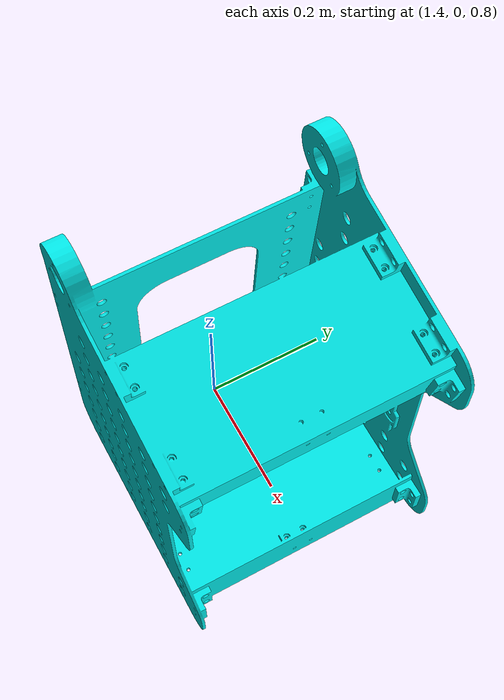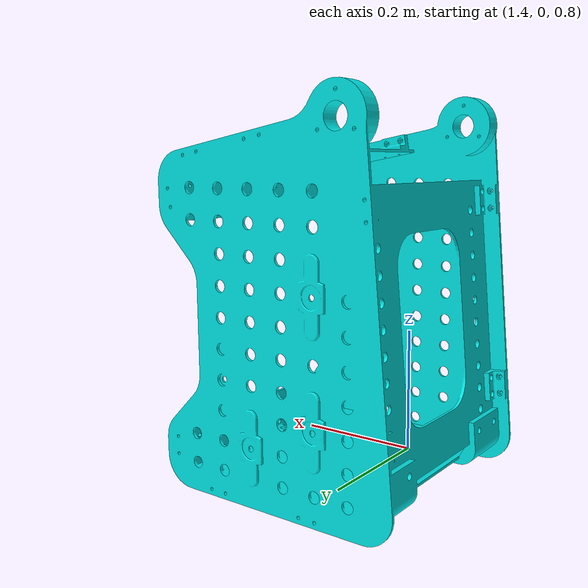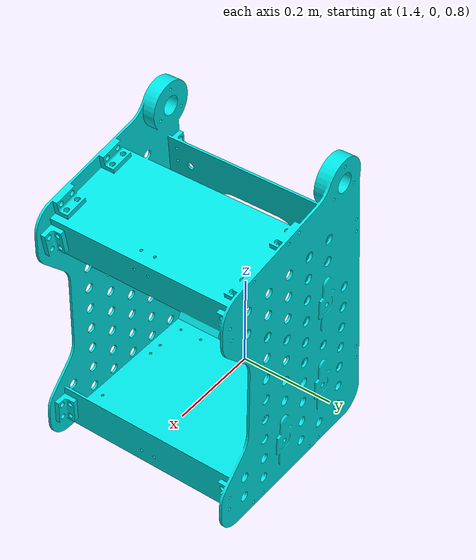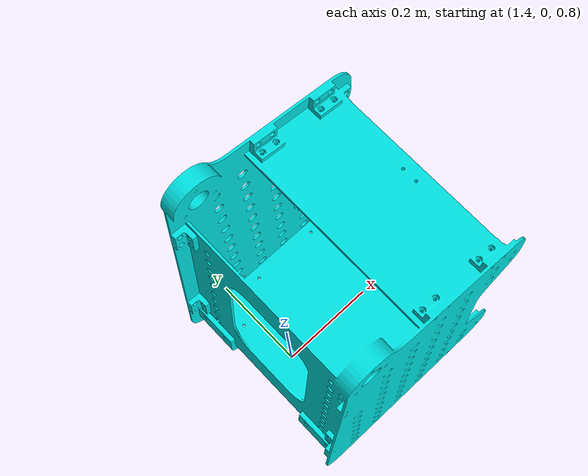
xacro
<?xml version="1.0" encoding="utf-8"?>
<robot name="environment" xmlns:xacro="http://www.ros.org/wiki/xacro">

  <xacro:arg name="with_sc"        default="false"/>
  <xacro:arg name="pylone_x"       default="1.5"/>
  <xacro:arg name="pylone_y"       default="0.0"/>
  <xacro:arg name="pylone_z"       default="1.03"/>
  <xacro:arg name="pylone_roll"    default="0.0"/>
  <xacro:arg name="pylone_pitch"   default="0.0"/>
  <xacro:arg name="pylone_yaw"     default="0.0"/>

  <link name="world"/>

  <xacro:include filename="$(find agimus_demo_07_fixed_tiago_pro_deburring)/urdf/pylone.urdf.xacro"/>

  <joint name="world_to_pylone" type="fixed">
    <parent link="world"/>
    <child link="pylone_link"/>
    <origin xyz="$(arg pylone_x) $(arg pylone_y) $(arg pylone_z)"
            rpy="$(arg pylone_roll) $(arg pylone_pitch) $(arg pylone_yaw)"/>
  </joint>

</robot>

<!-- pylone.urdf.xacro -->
<robot name="pylone" xmlns:xacro="http://www.ros.org/wiki/xacro">

  <xacro:arg name="with_sc" default="false"/>

  <material name="grey">
    <color rgba="0.0 0.9 0.9 1.0"/>
  </material>

  <link name="pylone_link">
    <visual>
      <geometry>
        <mesh filename="file://$(find agimus_demo_07_fixed_tiago_pro_deburring)/urdf/visual/pylone.stl"
              scale="1.0 1.0 1.0"/>
      </geometry>
      <material name="grey"/>
    </visual>
    <collision>
      <geometry>
        <mesh filename="file://$(find agimus_demo_07_fixed_tiago_pro_deburring)/urdf/collision/pylone.stl"
              scale="1.0 1.0 1.0"/>
      </geometry>
    </collision>
    <inertial>
      <origin rpy="0 0 0" xyz="0.0 0.0 0.0"/>
      <mass value="0.1"/>
      <inertia ixx="1" ixy="0" ixz="0" iyy="1" iyz="0" izz="1"/>
    </inertial>
  </link>

  <!-- Simplified capsule collision geometry for MPC — same geometry as Panda pylone -->
  <xacro:if value="${'$(arg with_sc)' == 'true'}">
    <link name="pylone_sc_link">

      <!-- Side edges of the hole (vertical, capsule_0 and capsule_1) -->
      <collision>
        <origin xyz="0.03 0.1 -0.045" rpy="0 0 0"/>
        <geometry><cylinder radius="0.004" length="0.6"/></geometry>
      </collision>
      <collision>
        <origin xyz="0.03 0.1 0.255" rpy="0 0 0"/>
        <geometry><sphere radius="0.004"/></geometry>
      </collision>
      <collision>
        <origin xyz="0.03 0.1 -0.345" rpy="0 0 0"/>
        <geometry><sphere radius="0.004"/></geometry>
      </collision>

      <collision>
        <origin xyz="0.03 -0.1 -0.045" rpy="0 0 0"/>
        <geometry><cylinder radius="0.004" length="0.6"/></geometry>
      </collision>
      <collision>
        <origin xyz="0.03 -0.1 0.255" rpy="0 0 0"/>
        <geometry><sphere radius="0.004"/></geometry>
      </collision>
      <collision>
        <origin xyz="0.03 -0.1 -0.345" rpy="0 0 0"/>
        <geometry><sphere radius="0.004"/></geometry>
      </collision>

      <!-- Top and bottom bars of the hole (horizontal, capsule_2 and capsule_3) -->
      <collision>
        <origin xyz="0.03 0.0 0.105" rpy="1.5708 0 0"/>
        <geometry><cylinder radius="0.004" length="0.4"/></geometry>
      </collision>
      <collision>
        <origin xyz="0.03 0.2 0.105" rpy="0 0 0"/>
        <geometry><sphere radius="0.004"/></geometry>
      </collision>
      <collision>
        <origin xyz="0.03 -0.2 0.105" rpy="0 0 0"/>
        <geometry><sphere radius="0.004"/></geometry>
      </collision>

      <collision>
        <origin xyz="0.03 0.0 -0.195" rpy="1.5708 0 0"/>
        <geometry><cylinder radius="0.004" length="0.4"/></geometry>
      </collision>
      <collision>
        <origin xyz="0.03 0.2 -0.195" rpy="0 0 0"/>
        <geometry><sphere radius="0.004"/></geometry>
      </collision>
      <collision>
        <origin xyz="0.03 -0.2 -0.195" rpy="0 0 0"/>
        <geometry><sphere radius="0.004"/></geometry>
      </collision>

      <!-- Main vertical edges of the pylone (capsule_4 and capsule_5) -->
      <collision>
        <origin xyz="0.0 0.205 0.0" rpy="0 0 0"/>
        <geometry><cylinder radius="0.004" length="1.3"/></geometry>
      </collision>
      <collision>
        <origin xyz="0.0 0.205 0.65" rpy="0 0 0"/>
        <geometry><sphere radius="0.004"/></geometry>
      </collision>
      <collision>
        <origin xyz="0.0 0.205 -0.65" rpy="0 0 0"/>
        <geometry><sphere radius="0.004"/></geometry>
      </collision>

      <collision>
        <origin xyz="0.0 -0.205 0.0" rpy="0 0 0"/>
        <geometry><cylinder radius="0.004" length="1.3"/></geometry>
      </collision>
      <collision>
        <origin xyz="0.0 -0.205 0.65" rpy="0 0 0"/>
        <geometry><sphere radius="0.004"/></geometry>
      </collision>
      <collision>
        <origin xyz="0.0 -0.205 -0.65" rpy="0 0 0"/>
        <geometry><sphere radius="0.004"/></geometry>
      </collision>

      <!-- Flat face box -->
      <collision>
        <origin rpy="0 0 0" xyz="0.25 0.2025 0.0"/>
        <geometry><box size="0.5 0.005 0.55"/></geometry>
      </collision>

    </link>
    <joint name="pylone_sc_link_joint" type="fixed">
      <origin rpy="0 0.0873 0" xyz="-0.171 0.0 0.03"/>
      <parent link="pylone_link"/>
      <child link="pylone_sc_link"/>
    </joint>
  </xacro:if>

  <gazebo>
    <static>true</static>
  </gazebo>

</robot>
